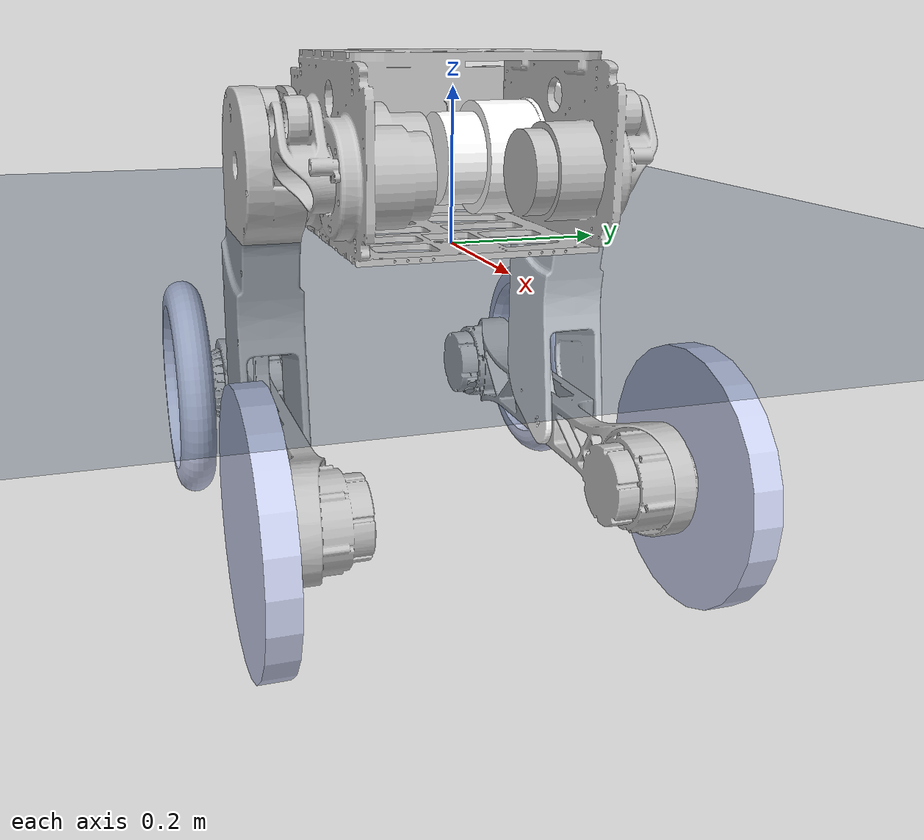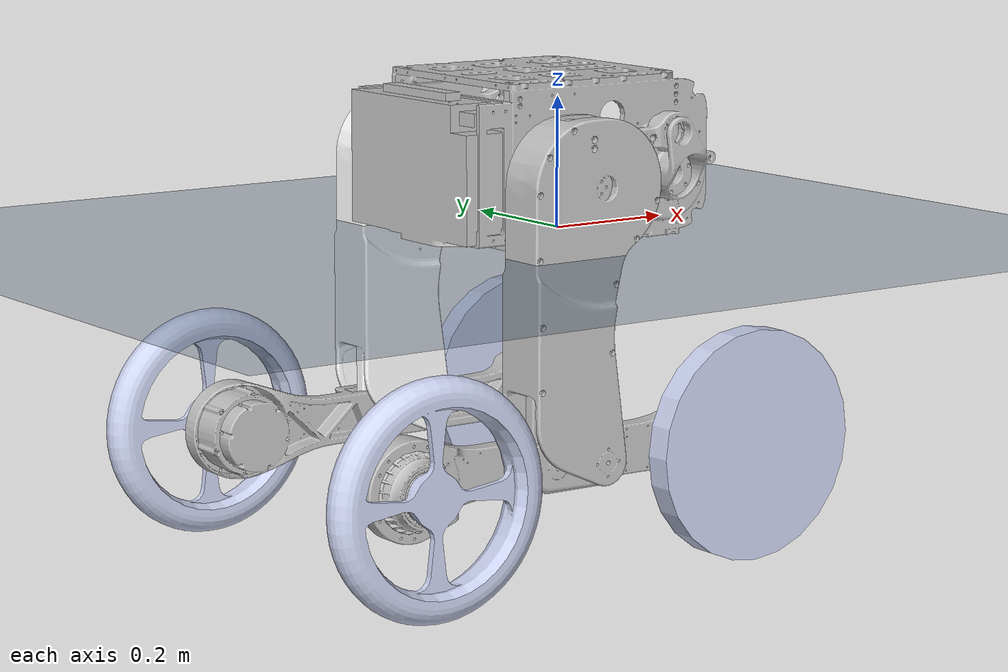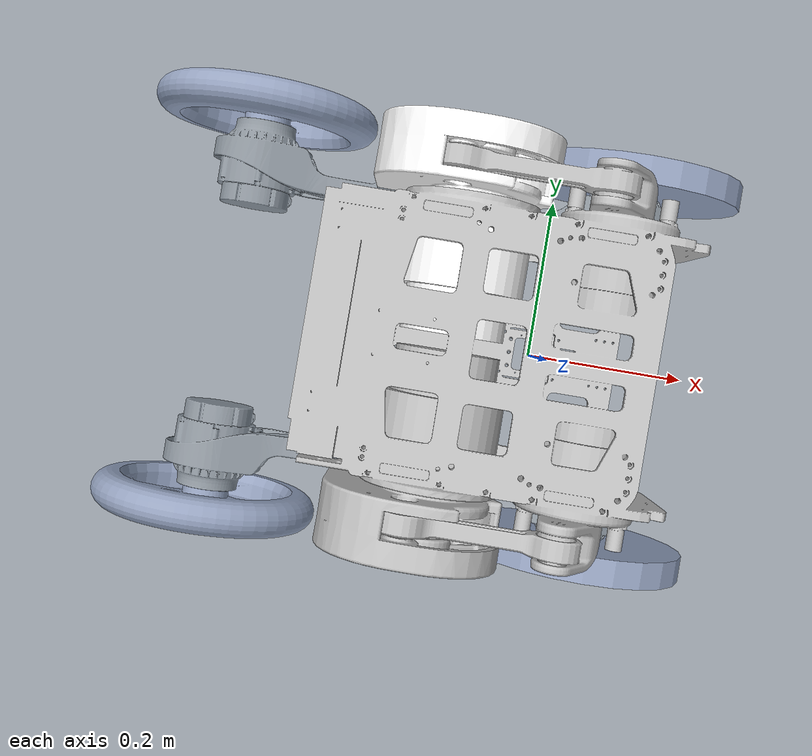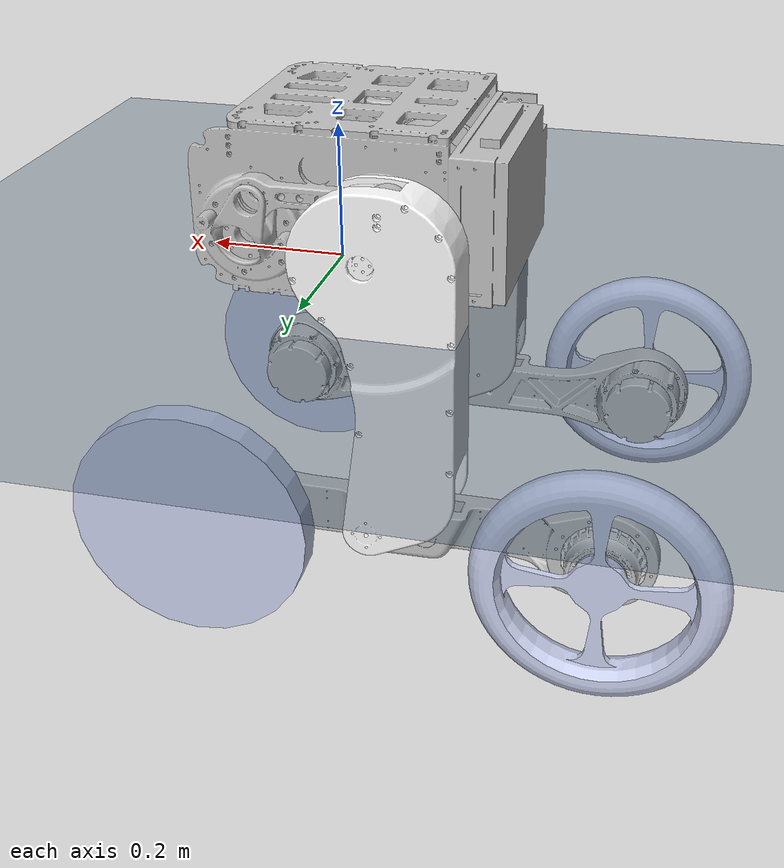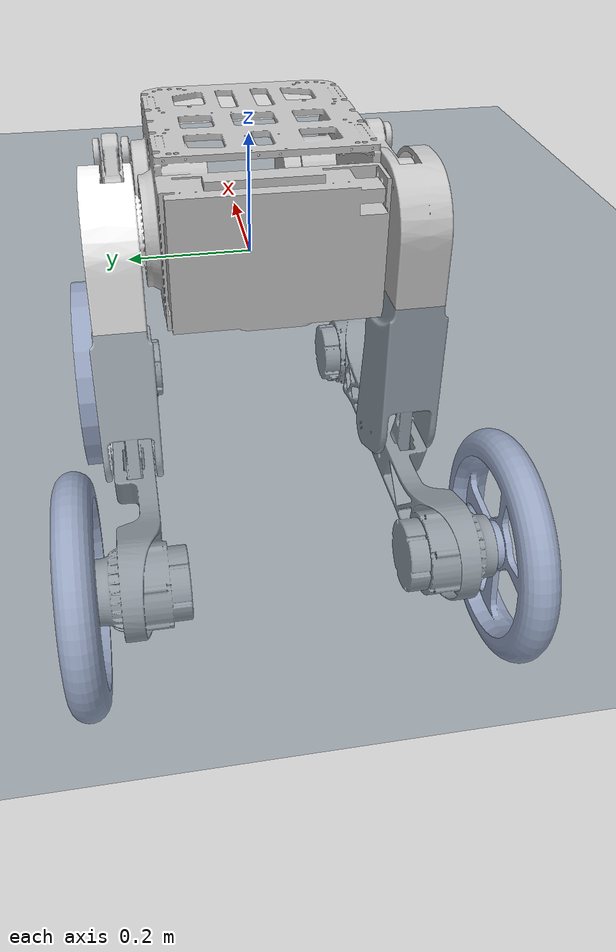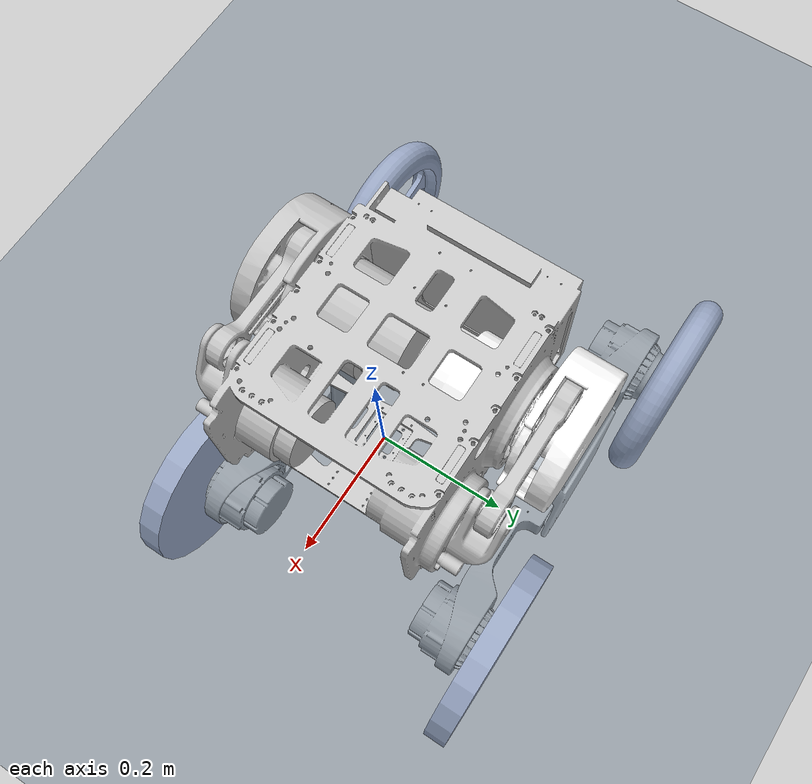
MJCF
<mujoco model="L2C_URDF02">
  <compiler angle="radian" meshdir="../meshes/" />
  <option timestep="0.002" integrator="RK4">
  </option>
  <default>
    <light castshadow="false" diffuse="1 1 1" />
    <camera fovy="60" />
    <default class="visual">
      <geom contype="0" conaffinity="0" group="1" type="mesh" rgba="0.9 0.9 0.9 1.0" />
    </default>
    <default class="collision">
      <geom contype="1" conaffinity="1" friction="1.0 0.8 0.8" rgba="0.9 0.3 0.4 0" margin="0.001" group="0" />
    </default>
    <joint damping="0.01" armature="0.01" frictionloss="0.5" />
  </default>
  <asset>
    <mesh name="base_link" file="base_link.STL" />
    <mesh name="right_hip_link" file="right_hip_link.STL" />
    <mesh name="right_knee_link" file="right_knee_link.STL" />
    <mesh name="fr_wheel_link" file="fr_wheel_link.STL" />
    <mesh name="rr_wheel_link" file="rr_wheel_link.STL" />
    <mesh name="left_hip_link" file="left_hip_link.STL" />
    <mesh name="left_knee_link" file="left_knee_link.STL" />
    <mesh name="fl_wheel_link" file="fl_wheel_link.STL" />
    <mesh name="rl_wheel_link" file="rl_wheel_link.STL" />
  </asset>
  <asset>
    <texture name="grid" type="2d" builtin="checker" width="512" height="512" rgb1=".1 .2 .3" rgb2=".2 .3 .4" />
    <material name="grid" texture="grid" texrepeat="1 1" texuniform="true" reflectance=".2" />
  </asset>
  <worldbody>
    <light pos="5 0 30" />
    <geom name="plane" type="plane" size="20 20 .01" material="grid" />
    <body name="base_link">
      <inertial pos="0.00053 -0.00121 0.12395" quat="0.467488 0.467911 -0.531136 0.529537" mass="27.9" diaginertia="0.95538 0.778993 0.421887" />
      <joint name="base_joint" type="free" limited="false"/>
      <geom type="mesh" contype="0" conaffinity="0" group="1" density="0" rgba="0.75294 0.75294 0.75294 1" mesh="base_link" />
      <geom type="mesh" rgba="0.75294 0.75294 0.75294 1" mesh="base_link" />
      <site name="imu" quat="1 0 0 0" />
      <!-- left leg -->
      <body name="left_hip_link" pos="-0.107 0.1605 0.098">
        <inertial pos="-0.02308 0.00645 -0.06214" quat="0.946723 -0.10132 -0.105033 -0.287086" mass="18.33" diaginertia="0.407902 0.3313 0.117918" />
        <joint name="left_hip_joint" pos="0 0 0" axis="0 1 0" range="-0.3665 1.0472" limited="true" />
        <geom type="mesh" contype="0" conaffinity="0" group="1" density="0" rgba="1 1 1 1" mesh="left_hip_link" />
        <geom type="mesh" rgba="1 1 1 1" mesh="left_hip_link" />
        <body name="left_knee_link" pos="0 0.0635 -0.4">
          <inertial pos="-0.03688 0.04409 -0.00021" quat="0.498123 0.500549 0.499386 0.501934" mass="12.6" diaginertia="0.886006 0.858629 0.0747203" />
          <joint name="left_knee_joint" pos="0 0 0" axis="0 1 0" range="-1.0472 0.384" limited="true"/>
          <geom type="mesh" contype="0" conaffinity="0" group="1" density="0" rgba="0.75294 0.75294 0.75294 1" mesh="left_knee_link" />
          <geom type="mesh" rgba="0.75294 0.75294 0.75294 1" mesh="left_knee_link" />
          <body name="fl_wheel_link" pos="0.25 0.06575 0">
            <inertial pos="0 0.019711 0" quat="0.707107 0 0 0.707107" mass="2.76" diaginertia="0.059327 0.030178 0.030178" />
            <joint name="fl_wheel_joint" pos="0 0 0" axis="0 1 0" />
            <geom type="cylinder" pos="0 0 0" quat="0.707107 0.707107 0 0" size="0.175 0.02" contype="1" conaffinity="1" density="0" rgba="0.79216 0.81961 0.93333 1" />
          </body>
          <body name="rl_wheel_link" pos="-0.33 0.06575 0">
            <inertial pos="0 0.019711 0" quat="0.707107 0 0 0.707107" mass="2.76" diaginertia="0.059327 0.030178 0.030178" />
            <joint name="rl_wheel_joint" pos="0 0 0" axis="0 1 0" />
            <geom type="mesh" contype="0" conaffinity="0" group="1" density="0" rgba="0.79216 0.81961 0.93333 1" mesh="rl_wheel_link" />
            <geom type="mesh" rgba="0.79216 0.81961 0.93333 1" mesh="rl_wheel_link" />
          </body>
        </body>
      </body>
      <!-- right leg -->
      <body name="right_hip_link" pos="-0.107 -0.1605 0.098">
        <inertial pos="-0.02309 -0.00735 -0.06211" quat="0.946722 0.101433 -0.105038 0.287048" mass="18.34" diaginertia="0.407964 0.3314 0.117876" />
        <joint name="right_hip_joint" pos="0 0 0" axis="0 1 0" range="-0.3665 1.0472" limited="true"/>
        <geom type="mesh" contype="0" conaffinity="0" group="1" density="0" rgba="0.75294 0.75294 0.75294 1" mesh="right_hip_link" />
        <geom type="mesh" rgba="0.75294 0.75294 0.75294 1" mesh="right_hip_link" />
        <body name="right_knee_link" pos="0 -0.0635 -0.4">
          <inertial pos="-0.03675 -0.0441 -0.0002" quat="0.501935 0.499422 0.500466 0.49817" mass="12.59" diaginertia="0.885987 0.858609 0.074711" />
          <joint name="right_knee_joint" pos="0 0 0" axis="0 1 0" range="-1.0472 0.384" limited="true"/>
          <geom type="mesh" contype="0" conaffinity="0" group="1" density="0" rgba="0.75294 0.75294 0.75294 1" mesh="right_knee_link" />
          <geom type="mesh" rgba="0.75294 0.75294 0.75294 1" mesh="right_knee_link" />
          <body name="fr_wheel_link" pos="0.25 -0.06575 0">
            <inertial pos="0 -0.019711 0" quat="0.707107 0 0 0.707107" mass="2.76" diaginertia="0.059327 0.030178 0.030178" />
            <joint name="fr_wheel_joint" pos="0 0 0" axis="0 1 0" />
            <geom type="cylinder" pos="0 0 0" quat="0.707107 0.707107 0 0" size="0.175 0.02" contype="1" conaffinity="1" density="0" rgba="0.79216 0.81961 0.93333 1" />
          </body>
          <body name="rr_wheel_link" pos="-0.33 -0.06575 0">
            <inertial pos="0 -0.019711 0" quat="0.707107 0 0 0.707107" mass="2.76" diaginertia="0.059327 0.030178 0.030178" />
            <joint name="rr_wheel_joint" pos="0 0 0" axis="0 1 0" />
            <geom type="mesh" contype="0" conaffinity="0" group="1" density="0" rgba="0.79216 0.81961 0.93333 1" mesh="rr_wheel_link" />
            <geom type="mesh" rgba="0.79216 0.81961 0.93333 1" mesh="rr_wheel_link" />
          </body>
        </body>
      </body>
    </body>
  </worldbody>
  <actuator>
    <motor name="left_hip_joint" joint="left_hip_joint" ctrllimited="true" ctrlrange="-745 745" gear="1" />
    <motor name="left_knee_joint" joint="left_knee_joint" ctrllimited="true" ctrlrange="-880 880" gear="1" />
    <motor name="fl_wheel_joint" joint="fl_wheel_joint" ctrllimited="true" ctrlrange="-460 460" gear="1" />
    <motor name="rl_wheel_joint" joint="rl_wheel_joint" ctrllimited="true" ctrlrange="-460 460" gear="1" />
    <motor name="right_hip_joint" joint="right_hip_joint" ctrllimited="true" ctrlrange="-745 745" gear="1" />
    <motor name="right_knee_joint" joint="right_knee_joint" ctrllimited="true" ctrlrange="-880 880" gear="1" />
    <motor name="fr_wheel_joint" joint="fr_wheel_joint" ctrllimited="true" ctrlrange="-460 460" gear="1" />
    <motor name="rr_wheel_joint" joint="rr_wheel_joint" ctrllimited="true" ctrlrange="-460 460" gear="1" />
  </actuator>

  <sensor>
    <actuatorpos name="left_hip_joint_p" actuator="left_hip_joint" />
    <actuatorvel name="left_hip_joint_v" actuator="left_hip_joint" />
    <actuatorfrc name="left_hip_joint_f" actuator="left_hip_joint" noise="0.001" />
    <actuatorpos name="left_knee_joint_p" actuator="left_knee_joint" />
    <actuatorvel name="left_knee_joint_v" actuator="left_knee_joint" />
    <actuatorfrc name="left_knee_joint_f" actuator="left_knee_joint" noise="0.001" />
    <actuatorpos name="fl_wheel_link_p" actuator="fl_wheel_joint" />
    <actuatorvel name="fl_wheel_link_v" actuator="fl_wheel_joint" />
    <actuatorfrc name="fl_wheel_link_f" actuator="fl_wheel_joint" noise="0.001" />
    <actuatorpos name="rl_wheel_link_p" actuator="rl_wheel_joint" />
    <actuatorvel name="rl_wheel_link_v" actuator="rl_wheel_joint" />
    <actuatorfrc name="rl_wheel_link_f" actuator="rl_wheel_joint" noise="0.001" />
    <actuatorpos name="right_hip_joint_p" actuator="right_hip_joint" />
    <actuatorvel name="right_hip_joint_v" actuator="right_hip_joint" />
    <actuatorfrc name="right_hip_joint_f" actuator="right_hip_joint" noise="0.001" />
    <actuatorpos name="right_knee_joint_p" actuator="right_knee_joint" />
    <actuatorvel name="right_knee_joint_v" actuator="right_knee_joint" />
    <actuatorfrc name="right_knee_joint_f" actuator="right_knee_joint" noise="0.001" />
    <actuatorpos name="fr_wheel_joint_p" actuator="fr_wheel_joint" />
    <actuatorvel name="fr_wheel_joint_v" actuator="fr_wheel_joint" />
    <actuatorfrc name="fr_wheel_joint_f" actuator="fr_wheel_joint" noise="0.001" />
    <actuatorpos name="rr_wheel_joint_p" actuator="rr_wheel_joint" />
    <actuatorvel name="rr_wheel_joint_v" actuator="rr_wheel_joint" />
    <actuatorfrc name="rr_wheel_joint_f" actuator="rr_wheel_joint" noise="0.001" />

    <framequat name='orientation' objtype='site' noise='0.001' objname='imu'/>
    <framepos name='position' objtype='site' noise='0.001' objname='imu'/>
    <gyro name='angular-velocity' site='imu' noise='0.005' cutoff='34.9'/>
    <velocimeter name='linear-velocity' site='imu' noise='0.001' cutoff='30'/>
    <accelerometer name='linear-acceleration' site='imu' noise='0.005' cutoff='157'/>
    <magnetometer name='magnetometer' site='imu'/>
  </sensor>

  <!-- 初始位置-4wheel -->
  <keyframe>
    <key time="0" qpos="0 0 0.477 1 0 0 0
      0 0 0 0
      0 0 0 0"/>
  </keyframe>

  <!-- 初始位置-2wheel -->
  <keyframe>
    <key time="0" qpos="0 0 0.529 1 0 0 0
    0.796 -0.0366 0 0
    0.796 -0.0366 0 0" />
  </keyframe>
</mujoco>
